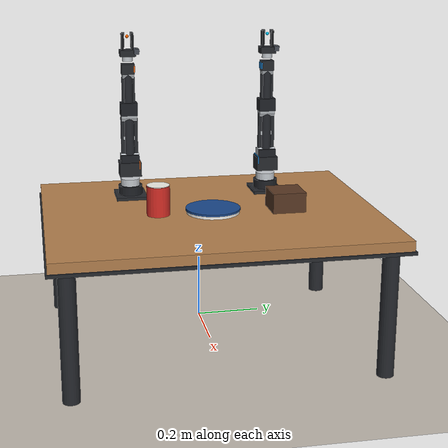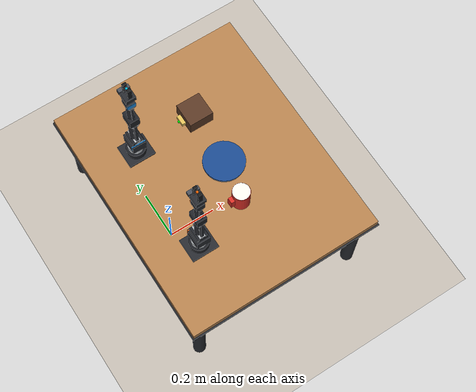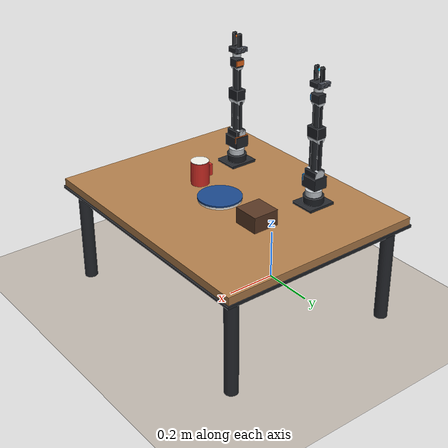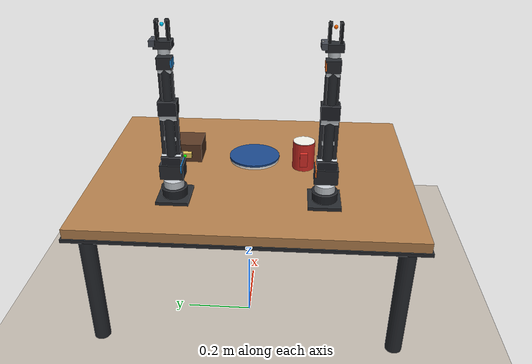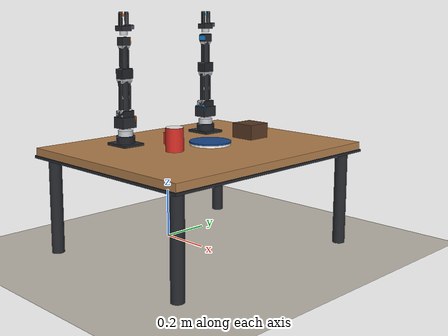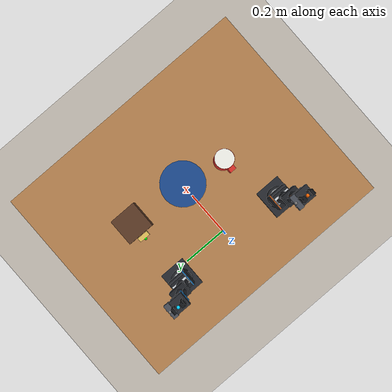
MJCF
<mujoco model="twinguard_dual_arm_scene">
  <compiler angle="degree" coordinate="local"/>

  <option timestep="0.002" gravity="0 0 -9.81" integrator="RK4"/>

  <default>
    <joint damping="0.5" armature="0.01" frictionloss="0.1"/>
    <geom friction="1.0 0.005 0.0001" solref="0.01 1" solimp="0.9 0.95 0.001"/>
    <position kp="40" kv="5"/>
  </default>

  <visual>
    <headlight ambient="0.25 0.25 0.28" diffuse="0.5 0.5 0.52" specular="0.1 0.1 0.1"/>
    <global offwidth="1280" offheight="800"/>
  </visual>

  <asset>
    <texture type="skybox" builtin="gradient" rgb1="0.2 0.3 0.45" rgb2="0.04 0.05 0.08" width="512" height="512"/>
    <texture name="floor_tex" type="2d" file="textures/lab_floor.png"/>
    <material name="floor_mat" texture="floor_tex" texrepeat="6 6" roughness="0.6" reflectance="0.08"/>

    <texture name="wood_tex" type="2d" file="textures/wood_table.png"/>
    <material name="table_wood_mat" texture="wood_tex" texrepeat="2 2" roughness="0.35" reflectance="0.12"/>
    <material name="table_frame_mat" rgba="0.15 0.16 0.18 1.0" metallic="0.7" roughness="0.25"/>

    <material name="arm_dark" rgba="0.15 0.16 0.18 1.0" roughness="0.5"/>
    <material name="arm_accent_left" rgba="0.12 0.55 0.88 1.0" roughness="0.3"/>
    <material name="arm_accent_right" rgba="0.92 0.42 0.12 1.0" roughness="0.3"/>
    <material name="gripper_mat" rgba="0.08 0.09 0.10 1.0" roughness="0.4"/>
    <material name="gripper_pad" rgba="0.25 0.25 0.27 1.0" roughness="0.8"/>
    <material name="joint_metal" rgba="0.78 0.80 0.82 1.0" metallic="0.85" roughness="0.2"/>
    <material name="servo_case" rgba="0.12 0.13 0.15 1.0" roughness="0.4"/>
    <material name="camera_chassis" rgba="0.28 0.30 0.34 1.0" metallic="0.5" roughness="0.3"/>
    <material name="camera_lens" rgba="0.02 0.02 0.05 1.0" roughness="0.1" reflectance="0.5"/>

    <!-- High contrast manipulation objects -->
    <material name="plate_rim_mat" rgba="0.10 0.28 0.55 1.0" roughness="0.25" reflectance="0.2"/>
    <material name="plate_inner_mat" rgba="0.96 0.96 0.95 1.0" roughness="0.2" reflectance="0.2"/>
    <material name="mug_ceramic_mat" rgba="0.85 0.18 0.15 1.0" roughness="0.2" reflectance="0.25"/>
    <material name="mug_inner_mat" rgba="0.95 0.95 0.92 1.0" roughness="0.3"/>
    <material name="drawer_wood_mat" rgba="0.35 0.22 0.14 1.0" roughness="0.4"/>
    <material name="drawer_box_mat" rgba="0.52 0.35 0.22 1.0" roughness="0.4"/>
    <material name="brass_handle_mat" rgba="0.88 0.75 0.35 1.0" metallic="0.9" roughness="0.15"/>
  </asset>

  <worldbody>
    <!-- Ground plane -->
    <geom name="ground" type="plane" size="5 5 0.1" material="floor_mat"/>

    <!-- Key Studio Lighting -->
    <light directional="true" pos="0.8 0.5 2.2" dir="-0.5 -0.3 -1.0" diffuse="0.7 0.7 0.72" specular="0.25 0.25 0.25" castshadow="true"/>
    <light directional="true" pos="-0.6 -0.6 1.8" dir="0.5 0.5 -1.0" diffuse="0.35 0.35 0.38" specular="0.05 0.05 0.05"/>
    <light directional="false" pos="0.2 0.0 1.6" diffuse="0.25 0.25 0.28" specular="0.1 0.1 0.1" castshadow="false"/>

    <!-- Shared Work Table -->
    <body name="table" pos="0.2 0 0.4">
      <geom name="table_top" type="box" size="0.4 0.5 0.02" material="table_wood_mat"/>
      <geom name="table_border" type="box" size="0.405 0.505 0.005" pos="0 0 -0.015" material="table_frame_mat"/>
      <geom name="table_leg_1" type="cylinder" size="0.025 0.2" pos="0.35 0.45 -0.2" material="table_frame_mat"/>
      <geom name="table_leg_2" type="cylinder" size="0.025 0.2" pos="-0.35 0.45 -0.2" material="table_frame_mat"/>
      <geom name="table_leg_3" type="cylinder" size="0.025 0.2" pos="0.35 -0.45 -0.2" material="table_frame_mat"/>
      <geom name="table_leg_4" type="cylinder" size="0.025 0.2" pos="-0.35 -0.45 -0.2" material="table_frame_mat"/>
    </body>

    <!-- Manipulation Object: Plate on shared table -->
    <body name="plate" pos="0.25 0 0.435">
      <freejoint name="plate_joint"/>
      <geom name="plate_geom" type="cylinder" size="0.08 0.007" material="plate_inner_mat" mass="0.1" friction="0.8 0.005 0.0001"/>
      <geom name="plate_rim" type="cylinder" size="0.082 0.003" pos="0 0 0.005" material="plate_rim_mat" mass="0.02"/>
    </body>

    <!-- Manipulation Object: Mug on shared table -->
    <body name="mug" pos="0.22 -0.16 0.465">
      <freejoint name="mug_joint"/>
      <geom name="mug_base" type="cylinder" size="0.035 0.045" material="mug_ceramic_mat" mass="0.08" friction="0.8 0.005 0.0001"/>
      <geom name="mug_rim" type="cylinder" size="0.034 0.002" pos="0 0 0.045" material="mug_inner_mat" mass="0.005"/>
      <geom name="mug_handle" type="box" size="0.008 0.012 0.022" pos="-0.042 0 0" material="mug_ceramic_mat" mass="0.01"/>
    </body>

    <!-- Manipulation Object: Drawer unit on shared table -->
    <body name="drawer_chest" pos="0.26 0.22 0.46">
      <geom name="drawer_chest_geom" type="box" size="0.05 0.05 0.03" material="drawer_wood_mat" mass="2.0"/>
      <body name="drawer" pos="0 0 0">
        <joint name="drawer_joint" type="slide" axis="-1 0 0" range="0 0.08" damping="1.0" armature="0.01"/>
        <geom name="drawer_body_geom" type="box" size="0.045 0.045 0.025" material="drawer_box_mat" mass="0.1" friction="0.8 0.005 0.0001"/>
        <geom name="drawer_handle" type="box" size="0.008 0.02 0.008" pos="-0.06 0 0" material="brass_handle_mat" mass="0.02"/>
        <site name="drawer_handle_site" pos="-0.07 0 0" size="0.005" rgba="0 1 0 1"/>
      </body>
    </body>

    <!-- Fixed Scene Cameras -->
    <camera name="demo_cam" mode="targetbody" target="table" pos="0.95 -0.78 0.78"/>
    <camera name="overview_cam" mode="targetbody" target="table" pos="1.15 -1.05 0.95"/>
    <camera name="front_cam" mode="targetbody" target="table" pos="1.0 0 0.65"/>
  </worldbody>

  <!-- Dual Arms: Left Arm and Right Arm -->
  <include file="left_arm.xml"/>
  <include file="right_arm.xml"/>

  <!-- Contact exclusions between adjacent linked bodies -->
  <contact>
    <exclude body1="drawer_chest" body2="drawer"/>
    <exclude body1="drawer_chest" body2="left_arm_gripper_finger_left"/>
    <exclude body1="drawer_chest" body2="left_arm_gripper_finger_right"/>
    <exclude body1="drawer_chest" body2="left_arm_link_5_wrist_roll"/>
    <exclude body1="drawer" body2="left_arm_gripper_finger_left"/>
    <exclude body1="drawer" body2="left_arm_gripper_finger_right"/>
    <exclude body1="drawer" body2="left_arm_link_5_wrist_roll"/>
    <exclude body1="table" body2="drawer"/>
    <exclude body1="table" body2="drawer_chest"/>
    <exclude body1="left_arm_base" body2="left_arm_link_1_yaw"/>
    <exclude body1="left_arm_link_1_yaw" body2="left_arm_link_2_shoulder"/>
    <exclude body1="left_arm_link_2_shoulder" body2="left_arm_link_3_elbow"/>
    <exclude body1="left_arm_link_3_elbow" body2="left_arm_link_4_wrist_pitch"/>
    <exclude body1="left_arm_link_4_wrist_pitch" body2="left_arm_link_5_wrist_roll"/>
    <exclude body1="left_arm_link_5_wrist_roll" body2="left_arm_gripper_finger_left"/>
    <exclude body1="left_arm_link_5_wrist_roll" body2="left_arm_gripper_finger_right"/>
    <exclude body1="right_arm_base" body2="right_arm_link_1_yaw"/>
    <exclude body1="right_arm_link_1_yaw" body2="right_arm_link_2_shoulder"/>
    <exclude body1="right_arm_link_2_shoulder" body2="right_arm_link_3_elbow"/>
    <exclude body1="right_arm_link_3_elbow" body2="right_arm_link_4_wrist_pitch"/>
    <exclude body1="right_arm_link_4_wrist_pitch" body2="right_arm_link_5_wrist_roll"/>
    <exclude body1="right_arm_link_5_wrist_roll" body2="right_arm_gripper_finger_left"/>
    <exclude body1="right_arm_link_5_wrist_roll" body2="right_arm_gripper_finger_right"/>

    <!-- Manipulation object contact exclusions with grippers during latching -->
    <exclude body1="left_arm_gripper_finger_left" body2="plate"/>
    <exclude body1="left_arm_gripper_finger_right" body2="plate"/>
    <exclude body1="left_arm_link_5_wrist_roll" body2="plate"/>
    <exclude body1="right_arm_gripper_finger_left" body2="plate"/>
    <exclude body1="right_arm_gripper_finger_right" body2="plate"/>
    <exclude body1="right_arm_link_5_wrist_roll" body2="plate"/>

    <exclude body1="left_arm_gripper_finger_left" body2="mug"/>
    <exclude body1="left_arm_gripper_finger_right" body2="mug"/>
    <exclude body1="left_arm_link_5_wrist_roll" body2="mug"/>
    <exclude body1="right_arm_gripper_finger_left" body2="mug"/>
    <exclude body1="right_arm_gripper_finger_right" body2="mug"/>
    <exclude body1="right_arm_link_5_wrist_roll" body2="mug"/>
  </contact>
</mujoco>

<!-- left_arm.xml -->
<mujoco model="left_arm">
  <worldbody>
    <!-- Left SO-101 Arm Mount (mounted at z = 0.42 on table, y = +0.22) -->
    <body name="left_arm_base" pos="0 0.22 0.42">
      <!-- Waveshare mounting plate and turret base -->
      <geom name="left_arm_base_plate" type="box" size="0.055 0.048 0.005" pos="0 0 0.005" material="arm_dark"/>
      <geom name="left_arm_base_turret" type="cylinder" size="0.038 0.016" pos="0 0 0.022" material="servo_case"/>
      <geom name="left_arm_base_hub" type="cylinder" size="0.030 0.012" pos="0 0 0.048" material="joint_metal"/>

      <!-- Joint 1: Base Yaw (Pan) -->
      <body name="left_arm_link_1_yaw" pos="0 0 0.07">
        <joint name="left_arm_joint_base_yaw" type="hinge" axis="0 0 1" range="-150 150"/>
        <!-- STS3215 pan servo chassis & bracket -->
        <geom name="left_arm_link_1_visual" type="box" size="0.028 0.034 0.022" pos="0 0 0.022" material="arm_dark"/>
        <geom name="left_arm_link_1_servo" type="box" size="0.022 0.028 0.026" pos="0 0 0.042" material="servo_case"/>
        <geom name="left_arm_link_1_badge" type="box" size="0.029 0.002 0.012" pos="0 -0.029 0.035" material="arm_accent_left"/>

        <!-- Joint 2: Shoulder Pitch -->
        <body name="left_arm_link_2_shoulder" pos="0 0 0.05">
          <joint name="left_arm_joint_shoulder_pitch" type="hinge" axis="0 1 0" range="-110 110"/>
          <!-- Shoulder pivot axle and drive horns -->
          <geom name="left_arm_shoulder_joint_hub" type="cylinder" size="0.022 0.028" quat="0.7071 0.7071 0 0" material="joint_metal"/>
          <!-- SO-101 upper arm dual-truss structural spar -->
          <geom name="left_arm_upper_arm_link" type="capsule" fromto="0 0 0 0 0 0.14" size="0.016" material="arm_dark"/>
          <geom name="left_arm_upper_spar_l" type="box" size="0.006 0.008 0.065" pos="0 0.018 0.07" material="arm_dark"/>
          <geom name="left_arm_upper_spar_r" type="box" size="0.006 0.008 0.065" pos="0 -0.018 0.07" material="arm_dark"/>
          <geom name="left_arm_upper_brace" type="box" size="0.008 0.018 0.006" pos="0 0 0.07" material="joint_metal"/>

          <!-- Joint 3: Elbow Pitch -->
          <body name="left_arm_link_3_elbow" pos="0 0 0.14">
            <joint name="left_arm_joint_elbow_pitch" type="hinge" axis="0 1 0" range="-120 120"/>
            <!-- Elbow pivot hub & STS3215 elbow motor -->
            <geom name="left_arm_elbow_joint_hub" type="cylinder" size="0.018 0.024" quat="0.7071 0.7071 0 0" material="joint_metal"/>
            <geom name="left_arm_elbow_motor" type="box" size="0.02 0.026 0.02" pos="0 0 0.022" material="servo_case"/>
            <!-- Forearm structural truss -->
            <geom name="left_arm_forearm_link" type="capsule" fromto="0 0 0 0 0 0.13" size="0.014" material="arm_dark"/>
            <geom name="left_arm_forearm_spar_l" type="box" size="0.005 0.006 0.055" pos="0 0.014 0.065" material="arm_dark"/>
            <geom name="left_arm_forearm_spar_r" type="box" size="0.005 0.006 0.055" pos="0 -0.014 0.065" material="arm_dark"/>

            <!-- Joint 4: Wrist Pitch -->
            <body name="left_arm_link_4_wrist_pitch" pos="0 0 0.13">
              <joint name="left_arm_joint_wrist_pitch" type="hinge" axis="0 1 0" range="-110 110"/>
              <!-- Wrist pitch gimbal hub -->
              <geom name="left_arm_wrist_pitch_hub" type="cylinder" size="0.014 0.018" quat="0.7071 0.7071 0 0" material="joint_metal"/>
              <geom name="left_arm_wrist_pitch_body" type="box" size="0.016 0.02 0.016" pos="0 0 0.016" material="arm_dark"/>
              <geom name="left_arm_wrist_pitch_accent" type="box" size="0.017 0.002 0.01" pos="0 -0.019 0.016" material="arm_accent_left"/>

              <!-- Joint 5: Wrist Roll -->
              <body name="left_arm_link_5_wrist_roll" pos="0 0 0.04">
                <joint name="left_arm_joint_wrist_roll" type="hinge" axis="0 0 1" range="-180 180"/>
                <geom name="left_arm_wrist_roll_flange" type="cylinder" size="0.016 0.008" pos="0 0 0.008" material="joint_metal"/>
                <geom name="left_arm_gripper_mount" type="box" size="0.02 0.024 0.01" pos="0 0 0.025" material="arm_dark"/>

                <!-- Wrist Camera (RealSense D405 style) and Sites -->
                <geom name="left_arm_cam_body" type="box" size="0.022 0.008 0.008" pos="0 0.026 0.03" material="camera_chassis"/>
                <geom name="left_arm_cam_lens_l" type="cylinder" size="0.003 0.002" pos="0.009 0.034 0.03" quat="0.7071 0.7071 0 0" material="camera_lens"/>
                <geom name="left_arm_cam_lens_r" type="cylinder" size="0.003 0.002" pos="-0.009 0.034 0.03" quat="0.7071 0.7071 0 0" material="camera_lens"/>
                <site name="left_arm_wrist_cam_site" pos="0 0.03 0.035" quat="0.7071 0.7071 0 0"/>
                <camera name="left_arm_wrist_cam" pos="0 0.03 0.035" xyaxes="1 0 0 0 0 1"/>
                <site name="left_arm_gripper_site" pos="0 0 0.075" size="0.005" rgba="0 0.8 1 1"/>

                <!-- Joint 6: Gripper Jaw (Main finger) -->
                <body name="left_arm_gripper_finger_left" pos="0 0.015 0.035">
                  <joint name="left_arm_joint_gripper" type="hinge" axis="1 0 0" range="0 40"/>
                  <geom name="left_arm_finger_left_geom" type="box" size="0.008 0.004 0.025" pos="0 0 0.025" material="gripper_mat"/>
                  <geom name="left_arm_finger_left_tip" type="box" size="0.007 0.004 0.005" pos="0 -0.002 0.048" material="gripper_mat"/>
                  <geom name="left_arm_finger_left_pad" type="box" size="0.006 0.001 0.018" pos="0 -0.004 0.025" material="gripper_pad"/>
                </body>

                <!-- Gripper Finger Right -->
                <body name="left_arm_gripper_finger_right" pos="0 -0.015 0.035">
                  <geom name="left_arm_finger_right_geom" type="box" size="0.008 0.004 0.025" pos="0 0 0.025" material="gripper_mat"/>
                  <geom name="left_arm_finger_right_tip" type="box" size="0.007 0.004 0.005" pos="0 0.002 0.048" material="gripper_mat"/>
                  <geom name="left_arm_finger_right_pad" type="box" size="0.006 0.001 0.018" pos="0 0.004 0.025" material="gripper_pad"/>
                </body>
              </body>
            </body>
          </body>
        </body>
      </body>
    </body>
  </worldbody>

  <actuator>
    <position name="left_arm_actuator_base_yaw" joint="left_arm_joint_base_yaw" ctrlrange="-150 150"/>
    <position name="left_arm_actuator_shoulder_pitch" joint="left_arm_joint_shoulder_pitch" ctrlrange="-110 110"/>
    <position name="left_arm_actuator_elbow_pitch" joint="left_arm_joint_elbow_pitch" ctrlrange="-120 120"/>
    <position name="left_arm_actuator_wrist_pitch" joint="left_arm_joint_wrist_pitch" ctrlrange="-110 110"/>
    <position name="left_arm_actuator_wrist_roll" joint="left_arm_joint_wrist_roll" ctrlrange="-180 180"/>
    <position name="left_arm_actuator_gripper" joint="left_arm_joint_gripper" ctrlrange="0 40"/>
  </actuator>
</mujoco>

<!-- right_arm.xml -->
<mujoco model="right_arm">
  <worldbody>
    <!-- Right SO-101 Arm Mount (mounted at z = 0.42 on table, y = -0.22) -->
    <body name="right_arm_base" pos="0 -0.22 0.42">
      <!-- Waveshare mounting plate and turret base -->
      <geom name="right_arm_base_plate" type="box" size="0.055 0.048 0.005" pos="0 0 0.005" material="arm_dark"/>
      <geom name="right_arm_base_turret" type="cylinder" size="0.038 0.016" pos="0 0 0.022" material="servo_case"/>
      <geom name="right_arm_base_hub" type="cylinder" size="0.030 0.012" pos="0 0 0.048" material="joint_metal"/>

      <!-- Joint 1: Base Yaw (Pan) -->
      <body name="right_arm_link_1_yaw" pos="0 0 0.07">
        <joint name="right_arm_joint_base_yaw" type="hinge" axis="0 0 1" range="-150 150"/>
        <!-- STS3215 pan servo chassis & bracket -->
        <geom name="right_arm_link_1_visual" type="box" size="0.028 0.034 0.022" pos="0 0 0.022" material="arm_dark"/>
        <geom name="right_arm_link_1_servo" type="box" size="0.022 0.028 0.026" pos="0 0 0.042" material="servo_case"/>
        <geom name="right_arm_link_1_badge" type="box" size="0.029 0.002 0.012" pos="0 0.029 0.035" material="arm_accent_right"/>

        <!-- Joint 2: Shoulder Pitch -->
        <body name="right_arm_link_2_shoulder" pos="0 0 0.05">
          <joint name="right_arm_joint_shoulder_pitch" type="hinge" axis="0 1 0" range="-110 110"/>
          <!-- Shoulder pivot axle and drive horns -->
          <geom name="right_arm_shoulder_joint_hub" type="cylinder" size="0.022 0.028" quat="0.7071 0.7071 0 0" material="joint_metal"/>
          <!-- SO-101 upper arm dual-truss structural spar -->
          <geom name="right_arm_upper_arm_link" type="capsule" fromto="0 0 0 0 0 0.14" size="0.016" material="arm_dark"/>
          <geom name="right_arm_upper_spar_l" type="box" size="0.006 0.008 0.065" pos="0 0.018 0.07" material="arm_dark"/>
          <geom name="right_arm_upper_spar_r" type="box" size="0.006 0.008 0.065" pos="0 -0.018 0.07" material="arm_dark"/>
          <geom name="right_arm_upper_brace" type="box" size="0.008 0.018 0.006" pos="0 0 0.07" material="joint_metal"/>

          <!-- Joint 3: Elbow Pitch -->
          <body name="right_arm_link_3_elbow" pos="0 0 0.14">
            <joint name="right_arm_joint_elbow_pitch" type="hinge" axis="0 1 0" range="-120 120"/>
            <!-- Elbow pivot hub & STS3215 elbow motor -->
            <geom name="right_arm_elbow_joint_hub" type="cylinder" size="0.018 0.024" quat="0.7071 0.7071 0 0" material="joint_metal"/>
            <geom name="right_arm_elbow_motor" type="box" size="0.02 0.026 0.02" pos="0 0 0.022" material="servo_case"/>
            <!-- Forearm structural truss -->
            <geom name="right_arm_forearm_link" type="capsule" fromto="0 0 0 0 0 0.13" size="0.014" material="arm_dark"/>
            <geom name="right_arm_forearm_spar_l" type="box" size="0.005 0.006 0.055" pos="0 0.014 0.065" material="arm_dark"/>
            <geom name="right_arm_forearm_spar_r" type="box" size="0.005 0.006 0.055" pos="0 -0.014 0.065" material="arm_dark"/>

            <!-- Joint 4: Wrist Pitch -->
            <body name="right_arm_link_4_wrist_pitch" pos="0 0 0.13">
              <joint name="right_arm_joint_wrist_pitch" type="hinge" axis="0 1 0" range="-110 110"/>
              <!-- Wrist pitch gimbal hub -->
              <geom name="right_arm_wrist_pitch_hub" type="cylinder" size="0.014 0.018" quat="0.7071 0.7071 0 0" material="joint_metal"/>
              <geom name="right_arm_wrist_pitch_body" type="box" size="0.016 0.02 0.016" pos="0 0 0.016" material="arm_dark"/>
              <geom name="right_arm_wrist_pitch_accent" type="box" size="0.017 0.002 0.01" pos="0 0.019 0.016" material="arm_accent_right"/>

              <!-- Joint 5: Wrist Roll -->
              <body name="right_arm_link_5_wrist_roll" pos="0 0 0.04">
                <joint name="right_arm_joint_wrist_roll" type="hinge" axis="0 0 1" range="-180 180"/>
                <geom name="right_arm_wrist_roll_flange" type="cylinder" size="0.016 0.008" pos="0 0 0.008" material="joint_metal"/>
                <geom name="right_arm_gripper_mount" type="box" size="0.02 0.024 0.01" pos="0 0 0.025" material="arm_dark"/>

                <!-- Wrist Camera (RealSense D405 style) and Sites -->
                <geom name="right_arm_cam_body" type="box" size="0.022 0.008 0.008" pos="0 0.026 0.03" material="camera_chassis"/>
                <geom name="right_arm_cam_lens_l" type="cylinder" size="0.003 0.002" pos="0.009 0.034 0.03" quat="0.7071 0.7071 0 0" material="camera_lens"/>
                <geom name="right_arm_cam_lens_r" type="cylinder" size="0.003 0.002" pos="-0.009 0.034 0.03" quat="0.7071 0.7071 0 0" material="camera_lens"/>
                <site name="right_arm_wrist_cam_site" pos="0 0.03 0.035" quat="0.7071 0.7071 0 0"/>
                <camera name="right_arm_wrist_cam" pos="0 0.03 0.035" xyaxes="1 0 0 0 0 1"/>
                <site name="right_arm_gripper_site" pos="0 0 0.075" size="0.005" rgba="1 0.4 0 1"/>

                <!-- Joint 6: Gripper Jaw (Main finger) -->
                <body name="right_arm_gripper_finger_left" pos="0 0.015 0.035">
                  <joint name="right_arm_joint_gripper" type="hinge" axis="1 0 0" range="0 40"/>
                  <geom name="right_arm_finger_left_geom" type="box" size="0.008 0.004 0.025" pos="0 0 0.025" material="gripper_mat"/>
                  <geom name="right_arm_finger_left_tip" type="box" size="0.007 0.004 0.005" pos="0 -0.002 0.048" material="gripper_mat"/>
                  <geom name="right_arm_finger_left_pad" type="box" size="0.006 0.001 0.018" pos="0 -0.004 0.025" material="gripper_pad"/>
                </body>

                <!-- Gripper Finger Right -->
                <body name="right_arm_gripper_finger_right" pos="0 -0.015 0.035">
                  <geom name="right_arm_finger_right_geom" type="box" size="0.008 0.004 0.025" pos="0 0 0.025" material="gripper_mat"/>
                  <geom name="right_arm_finger_right_tip" type="box" size="0.007 0.004 0.005" pos="0 0.002 0.048" material="gripper_mat"/>
                  <geom name="right_arm_finger_right_pad" type="box" size="0.006 0.001 0.018" pos="0 0.004 0.025" material="gripper_pad"/>
                </body>
              </body>
            </body>
          </body>
        </body>
      </body>
    </body>
  </worldbody>

  <actuator>
    <position name="right_arm_actuator_base_yaw" joint="right_arm_joint_base_yaw" ctrlrange="-150 150"/>
    <position name="right_arm_actuator_shoulder_pitch" joint="right_arm_joint_shoulder_pitch" ctrlrange="-110 110"/>
    <position name="right_arm_actuator_elbow_pitch" joint="right_arm_joint_elbow_pitch" ctrlrange="-120 120"/>
    <position name="right_arm_actuator_wrist_pitch" joint="right_arm_joint_wrist_pitch" ctrlrange="-110 110"/>
    <position name="right_arm_actuator_wrist_roll" joint="right_arm_joint_wrist_roll" ctrlrange="-180 180"/>
    <position name="right_arm_actuator_gripper" joint="right_arm_joint_gripper" ctrlrange="0 40"/>
  </actuator>
</mujoco>
